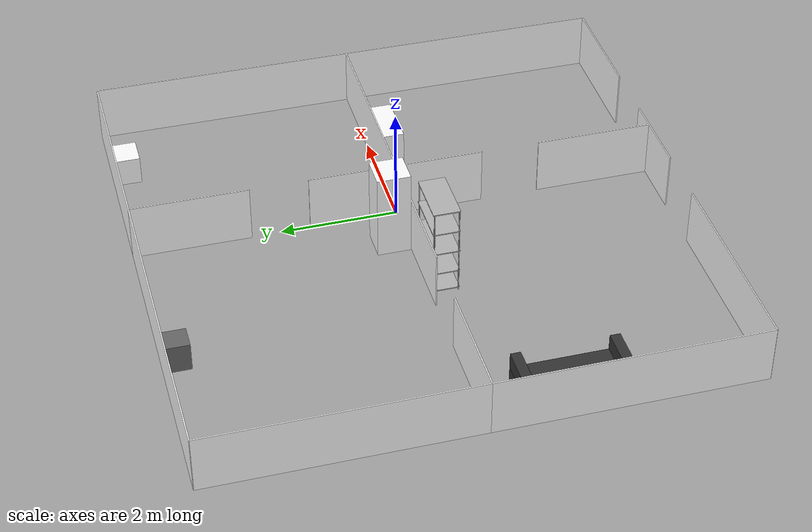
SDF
<sdf version="1.6">
    <model name="ar_ss26_arena">
        <static>true</static>
        <!-- Kitchen -->
        <include>
            <uri>model://ar_ss26/room/kitchen</uri>
            <pose>-2.75 2.25 0 0 0 0</pose>
            <static>true</static>
        </include>

        <!-- Living Room -->
        <include>
            <uri>model://ar_ss26/room/living_room</uri>
            <pose>-2.75 -2.25 0 0 0 0</pose>
            <static>true</static>
        </include>

        <!-- Dining Room -->
        <include>
            <uri>model://ar_ss26/room/dining_room</uri>
            <pose>1.75 -2.25 0 0 0 0</pose>
            <static>true</static>
        </include>

        <!-- Bed Room -->
        <include>
            <uri>model://ar_ss26/room/bed_room</uri>
            <pose>1.75 2.25 0 0 0 0</pose>
            <static>true</static>
        </include>
    </model>
</sdf>

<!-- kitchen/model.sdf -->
<sdf version="1.6">
    <model name="kitchen">
        <static>true</static>
        <!-- East wall 1 -->
        <link name="east_wall_1">
            <pose>2.75 1.25 0.5 0 0 0</pose>
            <visual name="visual_east_wall_1">
                <geometry>
                    <box>
                        <size>0.02 2.0 1.0</size>
                    </box>
                </geometry>
                <material>
                    <ambient>1 1 1 1</ambient> <!-- White color, fully opaque -->
                </material>
            </visual>
            <collision name="collision_east_wall_1">
                <geometry>
                    <box>
                        <size>0.02 2.0 1.0</size>
                    </box>
                </geometry>
            </collision>
        </link>

        <!-- East wall 2 -->
        <link name="east_wall_2">
            <pose>2.75 -1.5 0.5 0 0 0</pose>
            <visual name="visual_east_wall_2">
                <geometry>
                    <box>
                        <size>0.02 1.5 1.0</size>
                    </box>
                </geometry>
                <material>
                    <ambient>1 1 1 1</ambient>
                </material>
            </visual>
            <collision name="collision_east_wall_2">
                <geometry>
                    <box>
                        <size>0.02 1.5 1.0</size>
                    </box>
                </geometry>
            </collision>
        </link>

        <!-- North wall -->
        <link name="north_wall">
            <pose>0 2.25 0.5 0 0 0</pose>
            <visual name="visual_north_wall">
                <geometry>
                    <box>
                        <size>5.5 0.02 1.0</size>
                    </box>
                </geometry>
                <material>
                    <ambient>1 1 1 1</ambient>
                </material>
            </visual>
            <collision name="collision_north_wall">
                <geometry>
                    <box>
                        <size>5.5 0.02 1.0</size>
                    </box>
                </geometry>
            </collision>
        </link>

        <!-- South wall 1 -->
        <link name="south_wall_1">
            <pose>-1.75 -2.25 0.5 0 0 0</pose>
            <visual name="visual_south_wall_1">
                <geometry>
                    <box>
                        <size>2.0 0.02 1.0</size>
                    </box>
                </geometry>
                <material>
                    <ambient>1 1 1 1</ambient>
                </material>
            </visual>
            <collision name="collision_south_wall_1">
                <geometry>
                    <box>
                        <size>2.0 0.02 1.0</size>
                    </box>
                </geometry>
            </collision>
        </link>

        <!-- South wall 2 -->
        <link name="south_wall_2">
            <pose>1.5 -2.25 0.5 0 0 0</pose>
            <visual name="visual_south_wall_2">
                <geometry>
                    <box>
                        <size>2.5 0.02 1.0</size>
                    </box>
                </geometry>
                <material>
                    <ambient>1 1 1 1</ambient>
                </material>
            </visual>
            <collision name="collision_south_wall_2">
                <geometry>
                    <box>
                        <size>2.5 0.02 1.0</size>
                    </box>
                </geometry>
            </collision>
        </link>

        <!-- West wall -->
        <link name="west_wall">
            <pose>-2.75 0 0.5 0 0 0</pose>
            <visual name="visual_west_wall">
                <geometry>
                    <box>
                        <size>0.02 4.5 1.0</size>
                    </box>
                </geometry>
                <material>
                    <ambient>1 1 1 1</ambient>
                </material>
            </visual>
            <collision name="collision_west_wall">
                <geometry>
                    <box>
                        <size>0.02 4.5 1.0</size>
                    </box>
                </geometry>
            </collision>
        </link>

        <!-- Furniture -->
        <include>
            <uri>model://ar_ss26/furniture/dishwasher</uri>
            <pose>0 2.0 0 0 0 0</pose>
            <static>true</static>
        </include>
        <include>
            <uri>model://ar_ss26/furniture/fridge</uri>
            <pose>2.000000011175871 -1.9487794494628907 0 0 0 0</pose>
            <static>true</static>
        </include>

    </model>
</sdf>

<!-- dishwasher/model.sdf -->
<sdf version="1.6">
    <model name="dishwasher">
        <static>true</static>
        <!-- Body of the dishwasher -->
        <link name="body">
            <pose>0 0 0.25 0 0 0</pose>
            <visual name="visual_body">
                <geometry>
                    <box>
                        <size>0.4 0.4 0.5</size>
                    </box>
                </geometry>
                <material>
                    <ambient>0.4 0.4 0.4 1</ambient> <!-- Gray color, fully opaque -->
                </material>
            </visual>
            <collision name="collision_body">
                <geometry>
                    <box>
                        <size>0.4 0.4 0.5</size>
                    </box>
                </geometry>
            </collision>
        </link>
    </model>
</sdf>

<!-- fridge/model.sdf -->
<sdf version="1.6">
    <model name="fridge">
        <static>true</static>
        <!-- Body of the fridge -->
        <link name="body">
            <pose>0 0 0.76 0 0 0</pose>
            <visual name="visual_body">
                <geometry>
                    <box>
                        <size>0.54 0.57 1.52</size>
                    </box>
                </geometry>
                <material>
                    <ambient>1 1 1 1</ambient> <!-- White color, fully opaque -->
                </material>
            </visual>
            <collision name="collision_body">
                <geometry>
                    <box>
                        <size>0.54 0.57 1.52</size>
                    </box>
                </geometry>
            </collision>
        </link>
    </model>
</sdf>

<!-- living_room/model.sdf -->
<sdf version="1.6">
    <model name="living_room">
        <static>true</static>
        <!-- East wall 1 -->
        <link name="east_wall_1">
            <pose>2.75 1.5 0.5 0 0 0</pose>
            <visual name="visual_east_wall_1">
                <geometry>
                    <box>
                        <size>0.02 1.5 1.0</size>
                    </box>
                </geometry>
                <material>
                    <ambient>1 1 1 1</ambient> <!-- White color, fully opaque -->
                </material>
            </visual>
            <collision name="collision_east_wall_1">
                <geometry>
                    <box>
                        <size>0.02 1.5 1.0</size>
                    </box>
                </geometry>
            </collision>
        </link>

        <!-- East wall 2 -->
        <link name="east_wall_2">
            <pose>2.75 -1.25 0.5 0 0 0</pose>
            <visual name="visual_east_wall_2">
                <geometry>
                    <box>
                        <size>0.02 2.0 1.0</size>
                    </box>
                </geometry>
                <material>
                    <ambient>1 1 1 1</ambient>
                </material>
            </visual>
            <collision name="collision_east_wall_2">
                <geometry>
                    <box>
                        <size>0.02 2.0 1.0</size>
                    </box>
                </geometry>
            </collision>
        </link>

        <!-- North wall 1 -->
        <link name="north_wall_1">
            <pose>-1.75 2.25 0.5 0 0 0</pose>
            <visual name="visual_north_wall_1">
                <geometry>
                    <box>
                        <size>2.0 0.02 1.0</size>
                    </box>
                </geometry>
                <material>
                    <ambient>1 1 1 1</ambient>
                </material>
            </visual>
            <collision name="collision_north_wall_1">
                <geometry>
                    <box>
                        <size>2.0 0.02 1.0</size>
                    </box>
                </geometry>
            </collision>
        </link>

        <!-- North wall 2 -->
        <link name="north_wall_2">
            <pose>1.5 2.25 0.5 0 0 0</pose>
            <visual name="visual_north_wall_2">
                <geometry>
                    <box>
                        <size>2.5 0.02 1.0</size>
                    </box>
                </geometry>
                <material>
                    <ambient>1 1 1 1</ambient>
                </material>
            </visual>
            <collision name="collision_north_wall_2">
                <geometry>
                    <box>
                        <size>2.5 0.02 1.0</size>
                    </box>
                </geometry>
            </collision>
        </link>

        <!-- South wall 1 -->
        <link name="south_wall_1">
            <pose>-1.0 -2.25 0.5 0 0 0</pose>
            <visual name="visual_south_wall_1">
                <geometry>
                    <box>
                        <size>3.5 0.02 1.0</size>
                    </box>
                </geometry>
                <material>
                    <ambient>1 1 1 1</ambient>
                </material>
            </visual>
            <collision name="collision_south_wall_1">
                <geometry>
                    <box>
                        <size>3.5 0.02 1.0</size>
                    </box>
                </geometry>
            </collision>
        </link>

        <!-- South wall 2 -->
        <link name="south_wall_2">
            <pose>2.25 -2.25 0.5 0 0 0</pose>
            <visual name="visual_south_wall_2">
                <geometry>
                    <box>
                        <size>1.0 0.02 1.0</size>
                    </box>
                </geometry>
                <material>
                    <ambient>1 1 1 1</ambient>
                </material>
            </visual>
            <collision name="collision_south_wall_2">
                <geometry>
                    <box>
                        <size>1.0 0.02 1.0</size>
                    </box>
                </geometry>
            </collision>
        </link>

        <!-- West wall -->
        <link name="west_wall">
            <pose>-2.75 0 0.5 0 0 0</pose>
            <visual name="visual_west_wall">
                <geometry>
                    <box>
                        <size>0.02 4.5 1.0</size>
                    </box>
                </geometry>
                <material>
                    <ambient>1 1 1 1</ambient>
                </material>
            </visual>
            <collision name="collision_west_wall">
                <geometry>
                    <box>
                        <size>0.02 4.5 1.0</size>
                    </box>
                </geometry>
            </collision>
        </link>

        <!-- Furniture -->
        <include>
            <uri>model://ar_ss26/furniture/metal_shelf</uri>
            <pose>1.0 2.0 0.0 0 0 0</pose>
            <static>true</static>
        </include>
        <include>
            <uri>model://ar_ss26/furniture/sofa</uri>
            <pose>-2.267194390296936 0.8 0.0 0 0 0</pose>
            <static>true</static>
        </include>
    </model>
</sdf>

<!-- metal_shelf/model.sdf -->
<sdf version="1.6">
    <model name="metal_shelf">
        <static>true</static>
        <!-- Legs of the shelf -->
        <link name="leg_1">
            <pose>0.45 -0.205 0.8 0 0 0</pose>
            <visual name="visual_leg_1">
                <geometry>
                    <cylinder>
                        <radius>0.01</radius>
                        <length>1.6</length>
                    </cylinder>
                </geometry>
                <material>
                    <ambient>0.7 0.7 0.7 1</ambient> <!-- Gray color -->
                </material>
            </visual>
            <collision name="collision_leg_1">
                <geometry>
                    <cylinder>
                        <radius>0.01</radius>
                        <length>1.6</length>
                    </cylinder>
                </geometry>
            </collision>
        </link>
        <link name="leg_2">
            <pose>0.45 0.205 0.8 0 0 0</pose>
            <visual name="visual_leg_2">
                <geometry>
                    <cylinder>
                        <radius>0.01</radius>
                        <length>1.6</length>
                    </cylinder>
                </geometry>
                <material>
                    <ambient>0.7 0.7 0.7 1</ambient>
                </material>
            </visual>
            <collision name="collision_leg_2">
                <geometry>
                    <cylinder>
                        <radius>0.01</radius>
                        <length>1.6</length>
                    </cylinder>
                </geometry>
            </collision>
        </link>
        <link name="leg_3">
            <pose>-0.45 -0.205 0.8 0 0 0</pose>
            <visual name="visual_leg_3">
                <geometry>
                    <cylinder>
                        <radius>0.01</radius>
                        <length>1.6</length>
                    </cylinder>
                </geometry>
                <material>
                    <ambient>0.7 0.7 0.7 1</ambient>
                </material>
            </visual>
            <collision name="collision_leg_3">
                <geometry>
                    <cylinder>
                        <radius>0.01</radius>
                        <length>1.6</length>
                    </cylinder>
                </geometry>
            </collision>
        </link>
        <link name="leg_4">
            <pose>-0.45 0.205 0.8 0 0 0</pose>
            <visual name="visual_leg_4">
                <geometry>
                    <cylinder>
                        <radius>0.01</radius>
                        <length>1.6</length>
                    </cylinder>
                </geometry>
                <material>
                    <ambient>0.7 0.7 0.7 1</ambient>
                </material>
            </visual>
            <collision name="collision_leg_4">
                <geometry>
                    <cylinder>
                        <radius>0.01</radius>
                        <length>1.6</length>
                    </cylinder>
                </geometry>
            </collision>
        </link>

        <!-- Shelves -->
        <link name="shelf_1">
            <pose>0 0 0.05 0 0 0</pose>
            <visual name="visual_shelf_1">
                <geometry>
                    <box>
                        <size>0.92 0.45 0.02</size>
                    </box>
                </geometry>
                <material>
                    <ambient>0.7 0.7 0.7 1</ambient>
                </material>
            </visual>
            <collision name="collision_shelf_1">
                <geometry>
                    <box>
                        <size>0.92 0.45 0.02</size>
                    </box>
                </geometry>
            </collision>
        </link>
        <link name="shelf_2">
            <pose>0 0 0.4 0 0 0</pose>
            <visual name="visual_shelf_2">
                <geometry>
                    <box>
                        <size>0.92 0.45 0.02</size>
                    </box>
                </geometry>
                <material>
                    <ambient>0.7 0.7 0.7 1</ambient>
                </material>
            </visual>
            <collision name="collision_shelf_2">
                <geometry>
                    <box>
                        <size>0.92 0.45 0.02</size>
                    </box>
                </geometry>
            </collision>
        </link>
        <link name="shelf_3">
            <pose>0 0 0.8 0 0 0</pose>
            <visual name="visual_shelf_3">
                <geometry>
                    <box>
                        <size>0.92 0.45 0.02</size>
                    </box>
                </geometry>
                <material>
                    <ambient>0.7 0.7 0.7 1</ambient>
                </material>
            </visual>
            <collision name="collision_shelf_3">
                <geometry>
                    <box>
                        <size>0.92 0.45 0.02</size>
                    </box>
                </geometry>
            </collision>
        </link>
        <link name="shelf_4">
            <pose>0 0 1.2 0 0 0</pose>
            <visual name="visual_shelf_4">
                <geometry>
                    <box>
                        <size>0.92 0.45 0.02</size>
                    </box>
                </geometry>
                <material>
                    <ambient>0.7 0.7 0.7 1</ambient>
                </material>
            </visual>
            <collision name="collision_shelf_4">
                <geometry>
                    <box>
                        <size>0.92 0.45 0.02</size>
                    </box>
                </geometry>
            </collision>
        </link>
        <link name="shelf_5">
            <pose>0 0 1.6 0 0 0</pose>
            <visual name="visual_shelf_5">
                <geometry>
                    <box>
                        <size>0.92 0.45 0.02</size>
                    </box>
                </geometry>
                <material>
                    <ambient>0.7 0.7 0.7 1</ambient>
                </material>
            </visual>
            <collision name="collision_shelf_5">
                <geometry>
                    <box>
                        <size>0.92 0.45 0.02</size>
                    </box>
                </geometry>
            </collision>
        </link>
    </model>
</sdf>

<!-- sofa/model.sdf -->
<sdf version="1.6">
    <model name="sofa">
        <static>true</static>
        <!-- Back of the sofa -->
        <link name="back">
            <pose>-0.325 0 0.5125 0 0 0</pose>
            <visual name="visual_back">
                <geometry>
                    <box>
                        <size>0.2 1.77 0.275</size>
                    </box>
                </geometry>
                <material>
                    <ambient>0.2 0.2 0.2 1</ambient> <!-- Dark grey color -->
                </material>
            </visual>
            <collision name="collision_back">
                <geometry>
                    <box>
                        <size>0.2 1.77 0.275</size>
                    </box>
                </geometry>
            </collision>
        </link>

        <!-- Left arm of the sofa -->
        <link name="left_arm">
            <pose>0.1 -0.8 0.5125 0 0 0</pose>
            <visual name="visual_left_arm">
                <geometry>
                    <box>
                        <size>0.65 0.17 0.275</size>
                    </box>
                </geometry>
                <material>
                    <ambient>0.2 0.2 0.2 1</ambient>
                </material>
            </visual>
            <collision name="collision_left_arm">
                <geometry>
                    <box>
                        <size>0.65 0.17 0.275</size>
                    </box>
                </geometry>
            </collision>
        </link>

        <!-- Right arm of the sofa -->
        <link name="right_arm">
            <pose>0.1 0.8 0.5125 0 0 0</pose>
            <visual name="visual_right_arm">
                <geometry>
                    <box>
                        <size>0.65 0.17 0.275</size>
                    </box>
                </geometry>
                <material>
                    <ambient>0.2 0.2 0.2 1</ambient>
                </material>
            </visual>
            <collision name="collision_right_arm">
                <geometry>
                    <box>
                        <size>0.65 0.17 0.275</size>
                    </box>
                </geometry>
            </collision>
        </link>

        <!-- Legs of the sofa -->
        <link name="leg_1">
            <pose>-0.345 -0.815 0.0375 0 0 0</pose>
            <visual name="visual_leg_1">
                <geometry>
                    <box>
                        <size>0.05 0.05 0.075</size>
                    </box>
                </geometry>
                <material>
                    <ambient>0 0 0 1</ambient> <!-- Black color -->
                </material>
            </visual>
            <collision name="collision_leg_1">
                <geometry>
                    <box>
                        <size>0.05 0.05 0.075</size>
                    </box>
                </geometry>
            </collision>
        </link>

        <link name="leg_2">
            <pose>-0.345 0.815 0.0375 0 0 0</pose>
            <visual name="visual_leg_2">
                <geometry>
                    <box>
                        <size>0.05 0.05 0.075</size>
                    </box>
                </geometry>
                <material>
                    <ambient>0 0 0 1</ambient>
                </material>
            </visual>
            <collision name="collision_leg_2">
                <geometry>
                    <box>
                        <size>0.05 0.05 0.075</size>
                    </box>
                </geometry>
            </collision>
        </link>

        <link name="leg_3">
            <pose>0.365 0.815 0.0375 0 0 0</pose>
            <visual name="visual_leg_3">
                <geometry>
                    <box>
                        <size>0.05 0.05 0.075</size>
                    </box>
                </geometry>
                <material>
                    <ambient>0 0 0 1</ambient>
                </material>
            </visual>
            <collision name="collision_leg_3">
                <geometry>
                    <box>
                        <size>0.05 0.05 0.075</size>
                    </box>
                </geometry>
            </collision>
        </link>

        <link name="leg_4">
            <pose>0.365 -0.815 0.0375 0 0 0</pose>
            <visual name="visual_leg_4">
                <geometry>
                    <box>
                        <size>0.05 0.05 0.075</size>
                    </box>
                </geometry>
                <material>
                    <ambient>0 0 0 1</ambient>
                </material>
            </visual>
            <collision name="collision_leg_4">
                <geometry>
                    <box>
                        <size>0.05 0.05 0.075</size>
                    </box>
                </geometry>
            </collision>
        </link>

        <!-- Seat of the sofa -->
        <link name="seat">
            <pose>0 0 0.225 0 0 0</pose>
            <visual name="visual_seat">
                <geometry>
                    <box>
                        <size>0.85 1.77 0.3</size>
                    </box>
                </geometry>
                <material>
                    <ambient>0.2 0.2 0.2 1</ambient> <!-- Dark grey color to match back and arms -->
                </material>
            </visual>
            <collision name="collision_seat">
                <geometry>
                    <box>
                        <size>0.85 1.77 0.3</size>
                    </box>
                </geometry>
            </collision>
        </link>
    </model>
</sdf>

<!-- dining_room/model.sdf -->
<sdf version="1.6">
    <model name="dining_room">
        <static>true</static>
        <!-- East wall -->
        <link name="east_wall">
            <pose>1.75 0 0.5 0 0 0</pose>
            <visual name="visual_east_wall">
                <geometry>
                    <box>
                        <size>0.02 4.5 1.0</size>
                    </box>
                </geometry>
                <material>
                    <ambient>1 1 1 1</ambient> <!-- White color, fully opaque -->
                </material>
            </visual>
            <collision name="collision_east_wall">
                <geometry>
                    <box>
                        <size>0.02 4.5 1.0</size>
                    </box>
                </geometry>
            </collision>
        </link>

        <!-- North wall -->
        <link name="north_wall">
            <pose>0 2.25 0.5 0 0 0</pose>
            <visual name="visual_north_wall">
                <geometry>
                    <box>
                        <size>3.5 0.02 1.0</size>
                    </box>
                </geometry>
                <material>
                    <ambient>1 1 1 1</ambient>
                </material>
            </visual>
            <collision name="collision_north_wall">
                <geometry>
                    <box>
                        <size>3.5 0.02 1.0</size>
                    </box>
                </geometry>
            </collision>
        </link>

        <!-- South wall 1 -->
        <link name="south_wall_1">
            <pose>0.75 -2.25 0.5 0 0 0</pose>
            <visual name="visual_south_wall_1">
                <geometry>
                    <box>
                        <size>2.0 0.02 1.0</size>
                    </box>
                </geometry>
                <material>
                    <ambient>1 1 1 1</ambient>
                </material>
            </visual>
            <collision name="collision_south_wall_1">
                <geometry>
                    <box>
                        <size>2.0 0.02 1.0</size>
                    </box>
                </geometry>
            </collision>
        </link>

        <!-- South wall 2 -->
        <link name="south_wall_2">
            <pose>-1.5 -2.25 0.5 0 0 0</pose>
            <visual name="visual_south_wall_2">
                <geometry>
                    <box>
                        <size>0.5 0.02 1.0</size>
                    </box>
                </geometry>
                <material>
                    <ambient>1 1 1 1</ambient>
                </material>
            </visual>
            <collision name="collision_south_wall_2">
                <geometry>
                    <box>
                        <size>0.5 0.02 1.0</size>
                    </box>
                </geometry>
            </collision>
        </link>

        <!-- West wall 1 -->
        <link name="west_wall_1">
            <pose>-1.75 1.5 0.5 0 0 0</pose>
            <visual name="visual_west_wall_1">
                <geometry>
                    <box>
                        <size>0.02 1.5 1.0</size>
                    </box>
                </geometry>
                <material>
                    <ambient>1 1 1 1</ambient>
                </material>
            </visual>
            <collision name="collision_west_wall_1">
                <geometry>
                    <box>
                        <size>0.02 1.5 1.0</size>
                    </box>
                </geometry>
            </collision>
        </link>

        <!-- West wall 2 -->
        <link name="west_wall_2">
            <pose>-1.75 -1.25 0.5 0 0 0</pose>
            <visual name="visual_west_wall_2">
                <geometry>
                    <box>
                        <size>0.02 2.0 1.0</size>
                    </box>
                </geometry>
                <material>
                    <ambient>1 1 1 1</ambient>
                </material>
            </visual>
            <collision name="collision_west_wall_2">
                <geometry>
                    <box>
                        <size>0.02 2.0 1.0</size>
                    </box>
                </geometry>
            </collision>
        </link>

        <!-- Furniture -->

        <include>
            <uri>model://ar_ss26/furniture/storage_table</uri>
            <pose>0 2.0 0.0 0 0 0</pose>
            <static>true</static>
        </include>
    </model>
</sdf>

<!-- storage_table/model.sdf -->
<sdf version="1.6">
    <model name="storage_table">
        <static>true</static>
        <!-- Body of the storage table -->
        <link name="body">
            <pose>0 0 0.33 0 0 0</pose>
            <visual name="visual_body">
                <geometry>
                    <box>
                        <size>0.92 0.46 0.66</size>
                    </box>
                </geometry>
                <material>
                    <ambient>1 1 1 1</ambient> <!-- White color, fully opaque -->
                </material>
            </visual>
            <collision name="collision_body">
                <geometry>
                    <box>
                        <size>0.92 0.46 0.66</size>
                    </box>
                </geometry>
            </collision>
        </link>
    </model>
</sdf>

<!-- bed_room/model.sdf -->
<sdf version="1.6">
    <model name="bedroom">
        <static>true</static>
        <!-- East wall -->
        <link name="east_wall">
            <pose>1.75 0 0.5 0 0 0</pose>
            <visual name="visual_east_wall">
                <geometry>
                    <box>
                        <size>0.02 4.5 1.0</size>
                    </box>
                </geometry>
                <material>
                    <ambient>1 1 1 1</ambient> <!-- White color, fully opaque -->
                </material>
            </visual>
            <collision name="collision_east_wall">
                <geometry>
                    <box>
                        <size>0.02 4.5 1.0</size>
                    </box>
                </geometry>
            </collision>
        </link>

        <!-- North wall -->
        <link name="north_wall">
            <pose>0 2.25 0.5 0 0 0</pose>
            <visual name="visual_north_wall">
                <geometry>
                    <box>
                        <size>3.5 0.02 1.0</size>
                    </box>
                </geometry>
                <material>
                    <ambient>1 1 1 1</ambient>
                </material>
            </visual>
            <collision name="collision_north_wall">
                <geometry>
                    <box>
                        <size>3.5 0.02 1.0</size>
                    </box>
                </geometry>
            </collision>
        </link>

        <!-- South wall -->
        <link name="south_wall">
            <pose>0 -2.25 0.5 0 0 0</pose>
            <visual name="visual_south_wall">
                <geometry>
                    <box>
                        <size>3.5 0.02 1.0</size>
                    </box>
                </geometry>
                <material>
                    <ambient>1 1 1 1</ambient>
                </material>
            </visual>
            <collision name="collision_south_wall">
                <geometry>
                    <box>
                        <size>3.5 0.02 1.0</size>
                    </box>
                </geometry>
            </collision>
        </link>

        <!-- West wall 1 -->
        <link name="west_wall_1">
            <pose>-1.75 1.25 0.5 0 0 0</pose>
            <visual name="visual_west_wall_1">
                <geometry>
                    <box>
                        <size>0.02 2.0 1.0</size>
                    </box>
                </geometry>
                <material>
                    <ambient>1 1 1 1</ambient>
                </material>
            </visual>
            <collision name="collision_west_wall_1">
                <geometry>
                    <box>
                        <size>0.02 2.0 1.0</size>
                    </box>
                </geometry>
            </collision>
        </link>

        <!-- West wall 2 -->
        <link name="west_wall_2">
            <pose>-1.75 -1.5 0.5 0 0 0</pose>
            <visual name="visual_west_wall_2">
                <geometry>
                    <box>
                        <size>0.02 1.5 1.0</size>
                    </box>
                </geometry>
                <material>
                    <ambient>1 1 1 1</ambient>
                </material>
            </visual>
            <collision name="collision_west_wall_2">
                <geometry>
                    <box>
                        <size>0.02 1.5 1.0</size>
                    </box>
                </geometry>
            </collision>
        </link>

        <!-- Furniture -->
        <include>
            <uri>model://ar_ss26/furniture/night_table</uri>
            <pose>0.5 2.0080844163894653 0.0 0 0 0</pose>
            <static>true</static>
        </include>

    </model>
</sdf>

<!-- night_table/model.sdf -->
<sdf version="1.6">
    <model name="night_table">
        <static>true</static>
        <!-- Body of the night table -->
        <link name="plate">
            <pose>0 0 0.25 0 0 0</pose>
            <visual name="visual_plate">
                <geometry>
                    <box>
                        <size>0.495 0.45 0.5</size>
                    </box>
                </geometry>
                <material>
                    <ambient>1 1 1 1</ambient> <!-- White color, fully opaque -->
                </material>
            </visual>
            <collision name="collision_plate">
                <geometry>
                    <box>
                        <size>0.495 0.45 0.5</size>
                    </box>
                </geometry>
            </collision>
        </link>
    </model>
</sdf>
